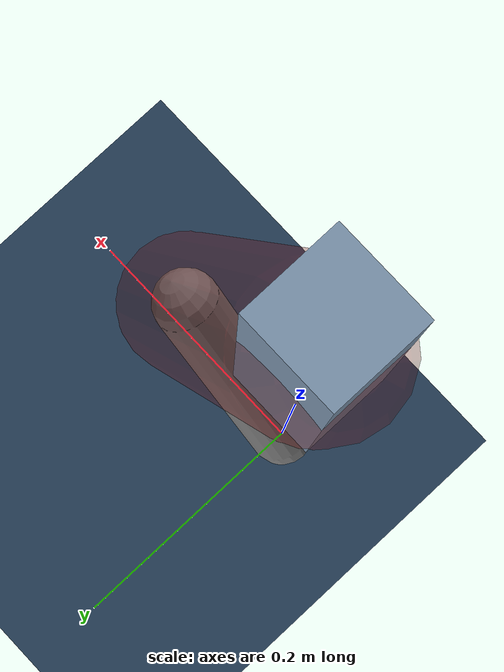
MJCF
<mujoco model="Hopper2D">
	<compiler inertiafromgeom="true" angle="radian" />
	<option timestep="0.001" integrator="implicit" cone="elliptic" solver="Newton" tolerance="1e-10" />

	<default>
		<geom contype="1" conaffinity="1" condim="3" friction="2 0.005 0.0001" solref="0.005 1" />
		<joint limited="true" damping="0.1" />
	</default>

	<asset>
		<texture name="skybox" type="skybox" builtin="gradient" rgb1=".4 .6 .8" rgb2="0 0 0" width="800" height="800" />
		<texture name="grid" type="2d" builtin="checker" rgb1=".1 .2 .3" rgb2=".2 .3 .4" width="300" height="300" mark="edge" markrgb=".2 .3 .4" />
		<material name="ground" texture="grid" texrepeat="1 1" texuniform="true" reflectance="0.1" />
		<material name="leg" rgba="0.5 0.6 0.7 1" />
	</asset>

	<worldbody>

		<geom name="floor" type="plane" size="5 5 0.25" material="ground" />

		<light directional="false" diffuse="0.8 0.8 0.8" specular="0.3 0.3 0.3" pos="0 0 2" dir="0 0 -1" />
		<light mode="targetbodycom" target="base" directional="false" diffuse="0.8 0.8 0.8" specular="0.3 0.3 0.3" pos="0 0 2" dir="0 0 -1" />

		<camera name="fixed" pos="0 -2 1" xyaxes="1 0 0 0 0 1" />
		<camera name="tracking" mode="trackcom" pos="0 -3 1" />

		<body name="root" pos="0 0 0.4341106792820285">
			<joint name="slide_x" type="slide" axis="1 0 0" range="-100 100" />
			<joint name="slide_z" type="slide" axis="0 0 1" range="0 10" />

			<body name="base" pos="0 0 0">
				<geom name="torso" type="box" size="0.03 0.03 0.1" mass="2.474" material="leg" />

				<body name="link1" pos="0 0 0" euler="0 1.2190599629098189 0">
					<joint type="hinge" axis="0 -1 0" pos="0 0 0" name="hinge1" limited="true" range="-3.14 3.14" stiffness="0" damping="0.1" />
					<geom name="thigh" type="capsule" fromto="0 0 0 0.3092389443824841 0 0" size="0.05" rgba="0.5 0 0 0.3" mass="1.0138451498327072" />

					<body name="link2" pos="0.3092389443824841 0 0" euler="0 0.9893734311740416 0">
						<joint type="hinge" axis="0 -1 0" pos="0 0 0" name="hinge2" limited="true" range="-3.14 3.14" stiffness="0" damping="0.1" />
						<geom name="shank" type="capsule" fromto="0 0 0 0.17897172148756887 0 0" size="0.025" mass="0.3829773771900551" />

					</body>
				</body>
			</body>
		</body>
	</worldbody>

	<actuator>
		<motor name="torque1" joint="hinge1" ctrlrange="-42.212835215808845 42.212835215808845" ctrllimited="true" gear="1" />
		<motor name="torque2" joint="hinge2" ctrlrange="-54.50334650046991 54.50334650046991" ctrllimited="true" gear="1" />
	</actuator>
</mujoco>
